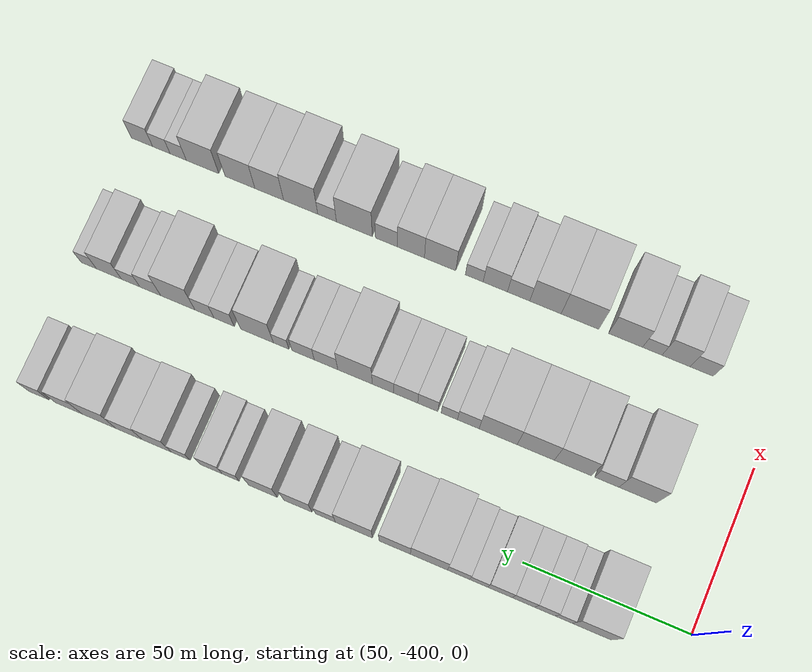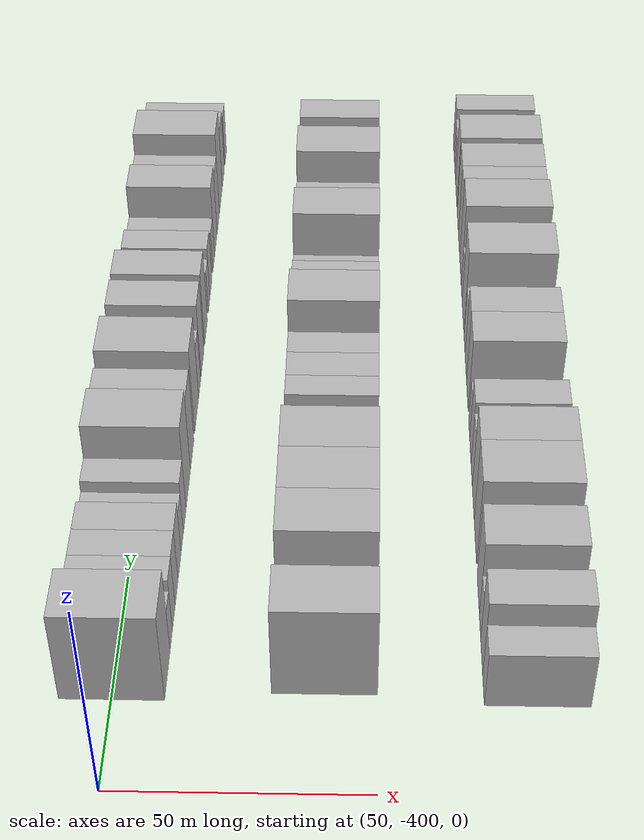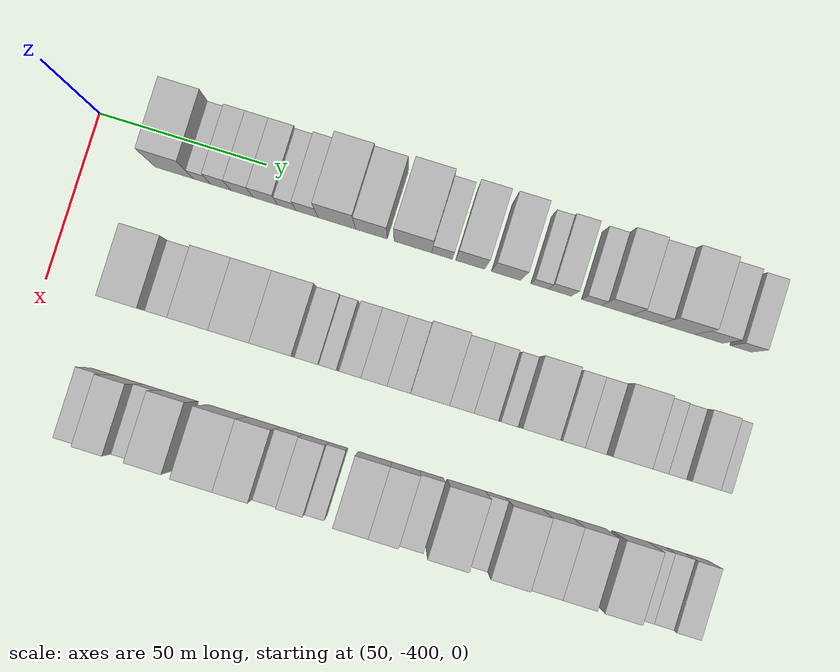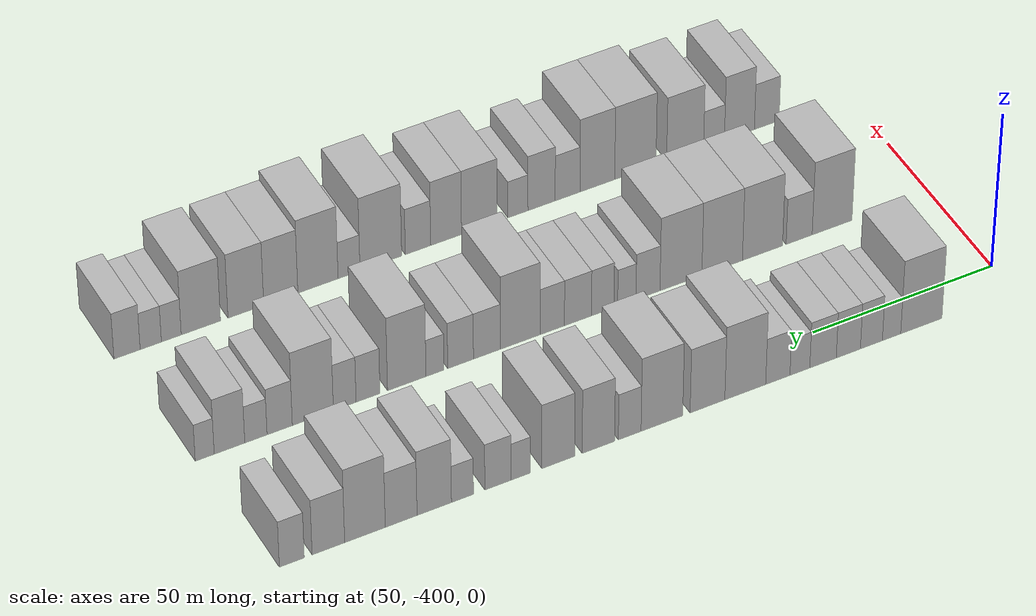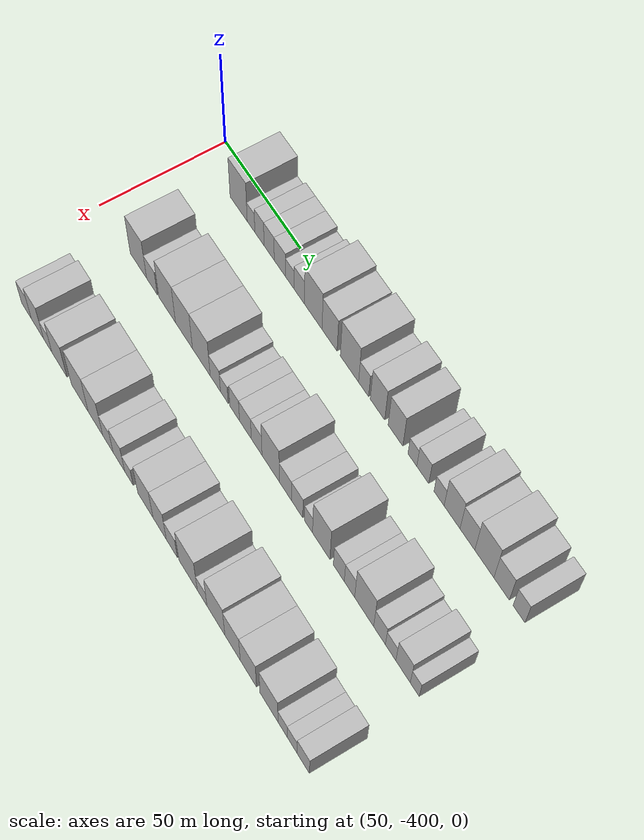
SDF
<sdf version="1.6">
 <world name="default">
  <model name="building_1">
   <static>1</static>
   <pose>50.0000 -374.2529 0 0.000000 0.000000 0.000000</pose>
   <link name="link">
    <pose>0 0 12.00 0 0 0</pose>
    <collision name="collision"><geometry><box><size>20.0000 11.4942 24.0000</size></box></geometry></collision>
    <visual name="visual">
     <cast_shadows>0</cast_shadows>
     <geometry><box><size>20.0000 11.4942 24.0000</size></box></geometry>
     <material>
      <script>
       <uri>model://HANNAS_wall/materials/scripts</uri>
       <uri>model://HANNAS_wall/materials/textures</uri>
       <name>vrc/HANNAS_wall</name>
      </script>
     </material>
    </visual>
   </link>
  </model>
  <model name="building_2">
   <static>1</static>
   <pose>50.0000 -365.9601 0 0.000000 0.000000 0.000000</pose>
   <link name="link">
    <pose>0 0 6.00 0 0 0</pose>
    <collision name="collision"><geometry><box><size>20.0000 5.0915 12.0000</size></box></geometry></collision>
    <visual name="visual">
     <cast_shadows>0</cast_shadows>
     <geometry><box><size>20.0000 5.0915 12.0000</size></box></geometry>
     <material>
      <script>
       <uri>model://HANNAS_wall/materials/scripts</uri>
       <uri>model://HANNAS_wall/materials/textures</uri>
       <name>vrc/HANNAS_wall</name>
      </script>
     </material>
    </visual>
   </link>
  </model>
  <model name="building_3">
   <static>1</static>
   <pose>50.0000 -360.3710 0 0.000000 0.000000 0.000000</pose>
   <link name="link">
    <pose>0 0 7.50 0 0 0</pose>
    <collision name="collision"><geometry><box><size>20.0000 6.0867 15.0000</size></box></geometry></collision>
    <visual name="visual">
     <cast_shadows>0</cast_shadows>
     <geometry><box><size>20.0000 6.0867 15.0000</size></box></geometry>
     <material>
      <script>
       <uri>model://HANNAS_wall/materials/scripts</uri>
       <uri>model://HANNAS_wall/materials/textures</uri>
       <name>vrc/HANNAS_wall</name>
      </script>
     </material>
    </visual>
   </link>
  </model>
  <model name="building_4">
   <static>1</static>
   <pose>50.0000 -353.9919 0 0.000000 0.000000 0.000000</pose>
   <link name="link">
    <pose>0 0 7.50 0 0 0</pose>
    <collision name="collision"><geometry><box><size>20.0000 6.6715 15.0000</size></box></geometry></collision>
    <visual name="visual">
     <cast_shadows>0</cast_shadows>
     <geometry><box><size>20.0000 6.6715 15.0000</size></box></geometry>
     <material>
      <script>
       <uri>model://HANNAS_wall/materials/scripts</uri>
       <uri>model://HANNAS_wall/materials/textures</uri>
       <name>vrc/HANNAS_wall</name>
      </script>
     </material>
    </visual>
   </link>
  </model>
  <model name="building_5">
   <static>1</static>
   <pose>50.0000 -347.0081 0 0.000000 0.000000 0.000000</pose>
   <link name="link">
    <pose>0 0 7.50 0 0 0</pose>
    <collision name="collision"><geometry><box><size>20.0000 7.2961 15.0000</size></box></geometry></collision>
    <visual name="visual">
     <cast_shadows>0</cast_shadows>
     <geometry><box><size>20.0000 7.2961 15.0000</size></box></geometry>
     <material>
      <script>
       <uri>model://HANNAS_wall/materials/scripts</uri>
       <uri>model://HANNAS_wall/materials/textures</uri>
       <name>vrc/HANNAS_wall</name>
      </script>
     </material>
    </visual>
   </link>
  </model>
  <model name="building_6">
   <static>1</static>
   <pose>50.0000 -340.6397 0 0.000000 0.000000 0.000000</pose>
   <link name="link">
    <pose>0 0 6.00 0 0 0</pose>
    <collision name="collision"><geometry><box><size>20.0000 5.4406 12.0000</size></box></geometry></collision>
    <visual name="visual">
     <cast_shadows>0</cast_shadows>
     <geometry><box><size>20.0000 5.4406 12.0000</size></box></geometry>
     <material>
      <script>
       <uri>model://HANNAS_wall/materials/scripts</uri>
       <uri>model://HANNAS_wall/materials/textures</uri>
       <name>vrc/HANNAS_wall</name>
      </script>
     </material>
    </visual>
   </link>
  </model>
  <model name="building_7">
   <static>1</static>
   <pose>50.0000 -334.5987 0 0.000000 0.000000 0.000000</pose>
   <link name="link">
    <pose>0 0 7.50 0 0 0</pose>
    <collision name="collision"><geometry><box><size>20.0000 6.6415 15.0000</size></box></geometry></collision>
    <visual name="visual">
     <cast_shadows>0</cast_shadows>
     <geometry><box><size>20.0000 6.6415 15.0000</size></box></geometry>
     <material>
      <script>
       <uri>model://HANNAS_wall/materials/scripts</uri>
       <uri>model://HANNAS_wall/materials/textures</uri>
       <name>vrc/HANNAS_wall</name>
      </script>
     </material>
    </visual>
   </link>
  </model>
  <model name="building_8">
   <static>1</static>
   <pose>50.0000 -325.7107 0 0.000000 0.000000 0.000000</pose>
   <link name="link">
    <pose>0 0 12.00 0 0 0</pose>
    <collision name="collision"><geometry><box><size>20.0000 11.1344 24.0000</size></box></geometry></collision>
    <visual name="visual">
     <cast_shadows>0</cast_shadows>
     <geometry><box><size>20.0000 11.1344 24.0000</size></box></geometry>
     <material>
      <script>
       <uri>model://HANNAS_wall/materials/scripts</uri>
       <uri>model://HANNAS_wall/materials/textures</uri>
       <name>vrc/HANNAS_wall</name>
      </script>
     </material>
    </visual>
   </link>
  </model>
  <model name="building_9">
   <static>1</static>
   <pose>50.0000 -315.4351 0 0.000000 0.000000 0.000000</pose>
   <link name="link">
    <pose>0 0 10.50 0 0 0</pose>
    <collision name="collision"><geometry><box><size>20.0000 9.4169 21.0000</size></box></geometry></collision>
    <visual name="visual">
     <cast_shadows>0</cast_shadows>
     <geometry><box><size>20.0000 9.4169 21.0000</size></box></geometry>
     <material>
      <script>
       <uri>model://HANNAS_wall/materials/scripts</uri>
       <uri>model://HANNAS_wall/materials/textures</uri>
       <name>vrc/HANNAS_wall</name>
      </script>
     </material>
    </visual>
   </link>
  </model>
  <model name="building_10">
   <static>1</static>
   <pose>50.0000 -303.1184 0 0.000000 0.000000 0.000000</pose>
   <link name="link">
    <pose>0 0 12.00 0 0 0</pose>
    <collision name="collision"><geometry><box><size>20.0000 11.2165 24.0000</size></box></geometry></collision>
    <visual name="visual">
     <cast_shadows>0</cast_shadows>
     <geometry><box><size>20.0000 11.2165 24.0000</size></box></geometry>
     <material>
      <script>
       <uri>model://HANNAS_wall/materials/scripts</uri>
       <uri>model://HANNAS_wall/materials/textures</uri>
       <name>vrc/HANNAS_wall</name>
      </script>
     </material>
    </visual>
   </link>
  </model>
  <model name="building_11">
   <static>1</static>
   <pose>50.0000 -294.4629 0 0.000000 0.000000 0.000000</pose>
   <link name="link">
    <pose>0 0 7.50 0 0 0</pose>
    <collision name="collision"><geometry><box><size>20.0000 6.0944 15.0000</size></box></geometry></collision>
    <visual name="visual">
     <cast_shadows>0</cast_shadows>
     <geometry><box><size>20.0000 6.0944 15.0000</size></box></geometry>
     <material>
      <script>
       <uri>model://HANNAS_wall/materials/scripts</uri>
       <uri>model://HANNAS_wall/materials/textures</uri>
       <name>vrc/HANNAS_wall</name>
      </script>
     </material>
    </visual>
   </link>
  </model>
  <model name="building_12">
   <static>1</static>
   <pose>50.0000 -286.0905 0 0.000000 0.000000 0.000000</pose>
   <link name="link">
    <pose>0 0 10.50 0 0 0</pose>
    <collision name="collision"><geometry><box><size>20.0000 8.6504 21.0000</size></box></geometry></collision>
    <visual name="visual">
     <cast_shadows>0</cast_shadows>
     <geometry><box><size>20.0000 8.6504 21.0000</size></box></geometry>
     <material>
      <script>
       <uri>model://HANNAS_wall/materials/scripts</uri>
       <uri>model://HANNAS_wall/materials/textures</uri>
       <name>vrc/HANNAS_wall</name>
      </script>
     </material>
    </visual>
   </link>
  </model>
  <model name="building_13">
   <static>1</static>
   <pose>50.0000 -275.4024 0 0.000000 0.000000 0.000000</pose>
   <link name="link">
    <pose>0 0 10.50 0 0 0</pose>
    <collision name="collision"><geometry><box><size>20.0000 8.7257 21.0000</size></box></geometry></collision>
    <visual name="visual">
     <cast_shadows>0</cast_shadows>
     <geometry><box><size>20.0000 8.7257 21.0000</size></box></geometry>
     <material>
      <script>
       <uri>model://HANNAS_wall/materials/scripts</uri>
       <uri>model://HANNAS_wall/materials/textures</uri>
       <name>vrc/HANNAS_wall</name>
      </script>
     </material>
    </visual>
   </link>
  </model>
  <model name="building_14">
   <static>1</static>
   <pose>50.0000 -265.4668 0 0.000000 0.000000 0.000000</pose>
   <link name="link">
    <pose>0 0 6.00 0 0 0</pose>
    <collision name="collision"><geometry><box><size>20.0000 5.1457 12.0000</size></box></geometry></collision>
    <visual name="visual">
     <cast_shadows>0</cast_shadows>
     <geometry><box><size>20.0000 5.1457 12.0000</size></box></geometry>
     <material>
      <script>
       <uri>model://HANNAS_wall/materials/scripts</uri>
       <uri>model://HANNAS_wall/materials/textures</uri>
       <name>vrc/HANNAS_wall</name>
      </script>
     </material>
    </visual>
   </link>
  </model>
  <model name="building_15">
   <static>1</static>
   <pose>50.0000 -259.4343 0 0.000000 0.000000 0.000000</pose>
   <link name="link">
    <pose>0 0 7.50 0 0 0</pose>
    <collision name="collision"><geometry><box><size>20.0000 6.9193 15.0000</size></box></geometry></collision>
    <visual name="visual">
     <cast_shadows>0</cast_shadows>
     <geometry><box><size>20.0000 6.9193 15.0000</size></box></geometry>
     <material>
      <script>
       <uri>model://HANNAS_wall/materials/scripts</uri>
       <uri>model://HANNAS_wall/materials/textures</uri>
       <name>vrc/HANNAS_wall</name>
      </script>
     </material>
    </visual>
   </link>
  </model>
  <model name="building_16">
   <static>1</static>
   <pose>50.0000 -250.0819 0 0.000000 0.000000 0.000000</pose>
   <link name="link">
    <pose>0 0 6.00 0 0 0</pose>
    <collision name="collision"><geometry><box><size>20.0000 5.7855 12.0000</size></box></geometry></collision>
    <visual name="visual">
     <cast_shadows>0</cast_shadows>
     <geometry><box><size>20.0000 5.7855 12.0000</size></box></geometry>
     <material>
      <script>
       <uri>model://HANNAS_wall/materials/scripts</uri>
       <uri>model://HANNAS_wall/materials/textures</uri>
       <name>vrc/HANNAS_wall</name>
      </script>
     </material>
    </visual>
   </link>
  </model>
  <model name="building_17">
   <static>1</static>
   <pose>50.0000 -242.6918 0 0.000000 0.000000 0.000000</pose>
   <link name="link">
    <pose>0 0 10.50 0 0 0</pose>
    <collision name="collision"><geometry><box><size>20.0000 8.9945 21.0000</size></box></geometry></collision>
    <visual name="visual">
     <cast_shadows>0</cast_shadows>
     <geometry><box><size>20.0000 8.9945 21.0000</size></box></geometry>
     <material>
      <script>
       <uri>model://HANNAS_wall/materials/scripts</uri>
       <uri>model://HANNAS_wall/materials/textures</uri>
       <name>vrc/HANNAS_wall</name>
      </script>
     </material>
    </visual>
   </link>
  </model>
  <model name="building_18">
   <static>1</static>
   <pose>50.0000 -234.0572 0 0.000000 0.000000 0.000000</pose>
   <link name="link">
    <pose>0 0 9.00 0 0 0</pose>
    <collision name="collision"><geometry><box><size>20.0000 8.2747 18.0000</size></box></geometry></collision>
    <visual name="visual">
     <cast_shadows>0</cast_shadows>
     <geometry><box><size>20.0000 8.2747 18.0000</size></box></geometry>
     <material>
      <script>
       <uri>model://HANNAS_wall/materials/scripts</uri>
       <uri>model://HANNAS_wall/materials/textures</uri>
       <name>vrc/HANNAS_wall</name>
      </script>
     </material>
    </visual>
   </link>
  </model>
  <model name="building_19">
   <static>1</static>
   <pose>50.0000 -224.6590 0 0.000000 0.000000 0.000000</pose>
   <link name="link">
    <pose>0 0 12.00 0 0 0</pose>
    <collision name="collision"><geometry><box><size>20.0000 10.5217 24.0000</size></box></geometry></collision>
    <visual name="visual">
     <cast_shadows>0</cast_shadows>
     <geometry><box><size>20.0000 10.5217 24.0000</size></box></geometry>
     <material>
      <script>
       <uri>model://HANNAS_wall/materials/scripts</uri>
       <uri>model://HANNAS_wall/materials/textures</uri>
       <name>vrc/HANNAS_wall</name>
      </script>
     </material>
    </visual>
   </link>
  </model>
  <model name="building_20">
   <static>1</static>
   <pose>50.0000 -215.1899 0 0.000000 0.000000 0.000000</pose>
   <link name="link">
    <pose>0 0 9.00 0 0 0</pose>
    <collision name="collision"><geometry><box><size>20.0000 8.4163 18.0000</size></box></geometry></collision>
    <visual name="visual">
     <cast_shadows>0</cast_shadows>
     <geometry><box><size>20.0000 8.4163 18.0000</size></box></geometry>
     <material>
      <script>
       <uri>model://HANNAS_wall/materials/scripts</uri>
       <uri>model://HANNAS_wall/materials/textures</uri>
       <name>vrc/HANNAS_wall</name>
      </script>
     </material>
    </visual>
   </link>
  </model>
  <model name="building_21">
   <static>1</static>
   <pose>50.0000 -205.7760 0 0.000000 0.000000 0.000000</pose>
   <link name="link">
    <pose>0 0 7.50 0 0 0</pose>
    <collision name="collision"><geometry><box><size>20.0000 6.4114 15.0000</size></box></geometry></collision>
    <visual name="visual">
     <cast_shadows>0</cast_shadows>
     <geometry><box><size>20.0000 6.4114 15.0000</size></box></geometry>
     <material>
      <script>
       <uri>model://HANNAS_wall/materials/scripts</uri>
       <uri>model://HANNAS_wall/materials/textures</uri>
       <name>vrc/HANNAS_wall</name>
      </script>
     </material>
    </visual>
   </link>
  </model>
  <model name="building_88">
   <static>1</static>
   <pose>90.0000 -372.3799 0 0.000000 0.000000 0.000000</pose>
   <link name="link">
    <pose>0 0 12.00 0 0 0</pose>
    <collision name="collision"><geometry><box><size>20.0000 11.2403 24.0000</size></box></geometry></collision>
    <visual name="visual">
     <cast_shadows>0</cast_shadows>
     <geometry><box><size>20.0000 11.2403 24.0000</size></box></geometry>
     <material>
      <script>
       <uri>model://HANNAS_wall/materials/scripts</uri>
       <uri>model://HANNAS_wall/materials/textures</uri>
       <name>vrc/HANNAS_wall</name>
      </script>
     </material>
    </visual>
   </link>
  </model>
  <model name="building_89">
   <static>1</static>
   <pose>90.0000 -363.1029 0 0.000000 0.000000 0.000000</pose>
   <link name="link">
    <pose>0 0 7.50 0 0 0</pose>
    <collision name="collision"><geometry><box><size>20.0000 7.3135 15.0000</size></box></geometry></collision>
    <visual name="visual">
     <cast_shadows>0</cast_shadows>
     <geometry><box><size>20.0000 7.3135 15.0000</size></box></geometry>
     <material>
      <script>
       <uri>model://HANNAS_wall/materials/scripts</uri>
       <uri>model://HANNAS_wall/materials/textures</uri>
       <name>vrc/HANNAS_wall</name>
      </script>
     </material>
    </visual>
   </link>
  </model>
  <model name="building_90">
   <static>1</static>
   <pose>90.0000 -352.8342 0 0.000000 0.000000 0.000000</pose>
   <link name="link">
    <pose>0 0 12.00 0 0 0</pose>
    <collision name="collision"><geometry><box><size>20.0000 11.2239 24.0000</size></box></geometry></collision>
    <visual name="visual">
     <cast_shadows>0</cast_shadows>
     <geometry><box><size>20.0000 11.2239 24.0000</size></box></geometry>
     <material>
      <script>
       <uri>model://HANNAS_wall/materials/scripts</uri>
       <uri>model://HANNAS_wall/materials/textures</uri>
       <name>vrc/HANNAS_wall</name>
      </script>
     </material>
    </visual>
   </link>
  </model>
  <model name="building_91">
   <static>1</static>
   <pose>90.0000 -341.5769 0 0.000000 0.000000 0.000000</pose>
   <link name="link">
    <pose>0 0 12.00 0 0 0</pose>
    <collision name="collision"><geometry><box><size>20.0000 11.2907 24.0000</size></box></geometry></collision>
    <visual name="visual">
     <cast_shadows>0</cast_shadows>
     <geometry><box><size>20.0000 11.2907 24.0000</size></box></geometry>
     <material>
      <script>
       <uri>model://HANNAS_wall/materials/scripts</uri>
       <uri>model://HANNAS_wall/materials/textures</uri>
       <name>vrc/HANNAS_wall</name>
      </script>
     </material>
    </visual>
   </link>
  </model>
  <model name="building_92">
   <static>1</static>
   <pose>90.0000 -330.1377 0 0.000000 0.000000 0.000000</pose>
   <link name="link">
    <pose>0 0 12.00 0 0 0</pose>
    <collision name="collision"><geometry><box><size>20.0000 11.5876 24.0000</size></box></geometry></collision>
    <visual name="visual">
     <cast_shadows>0</cast_shadows>
     <geometry><box><size>20.0000 11.5876 24.0000</size></box></geometry>
     <material>
      <script>
       <uri>model://HANNAS_wall/materials/scripts</uri>
       <uri>model://HANNAS_wall/materials/textures</uri>
       <name>vrc/HANNAS_wall</name>
      </script>
     </material>
    </visual>
   </link>
  </model>
  <model name="building_93">
   <static>1</static>
   <pose>90.0000 -321.0423 0 0.000000 0.000000 0.000000</pose>
   <link name="link">
    <pose>0 0 7.50 0 0 0</pose>
    <collision name="collision"><geometry><box><size>20.0000 6.6033 15.0000</size></box></geometry></collision>
    <visual name="visual">
     <cast_shadows>0</cast_shadows>
     <geometry><box><size>20.0000 6.6033 15.0000</size></box></geometry>
     <material>
      <script>
       <uri>model://HANNAS_wall/materials/scripts</uri>
       <uri>model://HANNAS_wall/materials/textures</uri>
       <name>vrc/HANNAS_wall</name>
      </script>
     </material>
    </visual>
   </link>
  </model>
  <model name="building_94">
   <static>1</static>
   <pose>90.0000 -315.2268 0 0.000000 0.000000 0.000000</pose>
   <link name="link">
    <pose>0 0 6.00 0 0 0</pose>
    <collision name="collision"><geometry><box><size>20.0000 5.0276 12.0000</size></box></geometry></collision>
    <visual name="visual">
     <cast_shadows>0</cast_shadows>
     <geometry><box><size>20.0000 5.0276 12.0000</size></box></geometry>
     <material>
      <script>
       <uri>model://HANNAS_wall/materials/scripts</uri>
       <uri>model://HANNAS_wall/materials/textures</uri>
       <name>vrc/HANNAS_wall</name>
      </script>
     </material>
    </visual>
   </link>
  </model>
  <model name="building_95">
   <static>1</static>
   <pose>90.0000 -308.6355 0 0.000000 0.000000 0.000000</pose>
   <link name="link">
    <pose>0 0 7.50 0 0 0</pose>
    <collision name="collision"><geometry><box><size>20.0000 6.1549 15.0000</size></box></geometry></collision>
    <visual name="visual">
     <cast_shadows>0</cast_shadows>
     <geometry><box><size>20.0000 6.1549 15.0000</size></box></geometry>
     <material>
      <script>
       <uri>model://HANNAS_wall/materials/scripts</uri>
       <uri>model://HANNAS_wall/materials/textures</uri>
       <name>vrc/HANNAS_wall</name>
      </script>
     </material>
    </visual>
   </link>
  </model>
  <model name="building_96">
   <static>1</static>
   <pose>90.0000 -301.8688 0 0.000000 0.000000 0.000000</pose>
   <link name="link">
    <pose>0 0 7.50 0 0 0</pose>
    <collision name="collision"><geometry><box><size>20.0000 7.3786 15.0000</size></box></geometry></collision>
    <visual name="visual">
     <cast_shadows>0</cast_shadows>
     <geometry><box><size>20.0000 7.3786 15.0000</size></box></geometry>
     <material>
      <script>
       <uri>model://HANNAS_wall/materials/scripts</uri>
       <uri>model://HANNAS_wall/materials/textures</uri>
       <name>vrc/HANNAS_wall</name>
      </script>
     </material>
    </visual>
   </link>
  </model>
  <model name="building_97">
   <static>1</static>
   <pose>90.0000 -294.8505 0 0.000000 0.000000 0.000000</pose>
   <link name="link">
    <pose>0 0 7.50 0 0 0</pose>
    <collision name="collision"><geometry><box><size>20.0000 6.6580 15.0000</size></box></geometry></collision>
    <visual name="visual">
     <cast_shadows>0</cast_shadows>
     <geometry><box><size>20.0000 6.6580 15.0000</size></box></geometry>
     <material>
      <script>
       <uri>model://HANNAS_wall/materials/scripts</uri>
       <uri>model://HANNAS_wall/materials/textures</uri>
       <name>vrc/HANNAS_wall</name>
      </script>
     </material>
    </visual>
   </link>
  </model>
  <model name="building_98">
   <static>1</static>
   <pose>90.0000 -286.1797 0 0.000000 0.000000 0.000000</pose>
   <link name="link">
    <pose>0 0 12.00 0 0 0</pose>
    <collision name="collision"><geometry><box><size>20.0000 10.6835 24.0000</size></box></geometry></collision>
    <visual name="visual">
     <cast_shadows>0</cast_shadows>
     <geometry><box><size>20.0000 10.6835 24.0000</size></box></geometry>
     <material>
      <script>
       <uri>model://HANNAS_wall/materials/scripts</uri>
       <uri>model://HANNAS_wall/materials/textures</uri>
       <name>vrc/HANNAS_wall</name>
      </script>
     </material>
    </visual>
   </link>
  </model>
  <model name="building_99">
   <static>1</static>
   <pose>90.0000 -277.1876 0 0.000000 0.000000 0.000000</pose>
   <link name="link">
    <pose>0 0 7.50 0 0 0</pose>
    <collision name="collision"><geometry><box><size>20.0000 7.3009 15.0000</size></box></geometry></collision>
    <visual name="visual">
     <cast_shadows>0</cast_shadows>
     <geometry><box><size>20.0000 7.3009 15.0000</size></box></geometry>
     <material>
      <script>
       <uri>model://HANNAS_wall/materials/scripts</uri>
       <uri>model://HANNAS_wall/materials/textures</uri>
       <name>vrc/HANNAS_wall</name>
      </script>
     </material>
    </visual>
   </link>
  </model>
  <model name="building_100">
   <static>1</static>
   <pose>90.0000 -270.0797 0 0.000000 0.000000 0.000000</pose>
   <link name="link">
    <pose>0 0 7.50 0 0 0</pose>
    <collision name="collision"><geometry><box><size>20.0000 6.9149 15.0000</size></box></geometry></collision>
    <visual name="visual">
     <cast_shadows>0</cast_shadows>
     <geometry><box><size>20.0000 6.9149 15.0000</size></box></geometry>
     <material>
      <script>
       <uri>model://HANNAS_wall/materials/scripts</uri>
       <uri>model://HANNAS_wall/materials/textures</uri>
       <name>vrc/HANNAS_wall</name>
      </script>
     </material>
    </visual>
   </link>
  </model>
  <model name="building_101">
   <static>1</static>
   <pose>90.0000 -263.2146 0 0.000000 0.000000 0.000000</pose>
   <link name="link">
    <pose>0 0 6.00 0 0 0</pose>
    <collision name="collision"><geometry><box><size>20.0000 4.8151 12.0000</size></box></geometry></collision>
    <visual name="visual">
     <cast_shadows>0</cast_shadows>
     <geometry><box><size>20.0000 4.8151 12.0000</size></box></geometry>
     <material>
      <script>
       <uri>model://HANNAS_wall/materials/scripts</uri>
       <uri>model://HANNAS_wall/materials/textures</uri>
       <name>vrc/HANNAS_wall</name>
      </script>
     </material>
    </visual>
   </link>
  </model>
  <model name="building_102">
   <static>1</static>
   <pose>90.0000 -255.6675 0 0.000000 0.000000 0.000000</pose>
   <link name="link">
    <pose>0 0 12.00 0 0 0</pose>
    <collision name="collision"><geometry><box><size>20.0000 10.2791 24.0000</size></box></geometry></collision>
    <visual name="visual">
     <cast_shadows>0</cast_shadows>
     <geometry><box><size>20.0000 10.2791 24.0000</size></box></geometry>
     <material>
      <script>
       <uri>model://HANNAS_wall/materials/scripts</uri>
       <uri>model://HANNAS_wall/materials/textures</uri>
       <name>vrc/HANNAS_wall</name>
      </script>
     </material>
    </visual>
   </link>
  </model>
  <model name="building_103">
   <static>1</static>
   <pose>90.0000 -245.3530 0 0.000000 0.000000 0.000000</pose>
   <link name="link">
    <pose>0 0 7.50 0 0 0</pose>
    <collision name="collision"><geometry><box><size>20.0000 6.3501 15.0000</size></box></geometry></collision>
    <visual name="visual">
     <cast_shadows>0</cast_shadows>
     <geometry><box><size>20.0000 6.3501 15.0000</size></box></geometry>
     <material>
      <script>
       <uri>model://HANNAS_wall/materials/scripts</uri>
       <uri>model://HANNAS_wall/materials/textures</uri>
       <name>vrc/HANNAS_wall</name>
      </script>
     </material>
    </visual>
   </link>
  </model>
  <model name="building_104">
   <static>1</static>
   <pose>90.0000 -239.1724 0 0.000000 0.000000 0.000000</pose>
   <link name="link">
    <pose>0 0 7.50 0 0 0</pose>
    <collision name="collision"><geometry><box><size>20.0000 6.0110 15.0000</size></box></geometry></collision>
    <visual name="visual">
     <cast_shadows>0</cast_shadows>
     <geometry><box><size>20.0000 6.0110 15.0000</size></box></geometry>
     <material>
      <script>
       <uri>model://HANNAS_wall/materials/scripts</uri>
       <uri>model://HANNAS_wall/materials/textures</uri>
       <name>vrc/HANNAS_wall</name>
      </script>
     </material>
    </visual>
   </link>
  </model>
  <model name="building_105">
   <static>1</static>
   <pose>90.0000 -230.7540 0 0.000000 0.000000 0.000000</pose>
   <link name="link">
    <pose>0 0 12.00 0 0 0</pose>
    <collision name="collision"><geometry><box><size>20.0000 10.8259 24.0000</size></box></geometry></collision>
    <visual name="visual">
     <cast_shadows>0</cast_shadows>
     <geometry><box><size>20.0000 10.8259 24.0000</size></box></geometry>
     <material>
      <script>
       <uri>model://HANNAS_wall/materials/scripts</uri>
       <uri>model://HANNAS_wall/materials/textures</uri>
       <name>vrc/HANNAS_wall</name>
      </script>
     </material>
    </visual>
   </link>
  </model>
  <model name="building_106">
   <static>1</static>
   <pose>90.0000 -222.0225 0 0.000000 0.000000 0.000000</pose>
   <link name="link">
    <pose>0 0 7.50 0 0 0</pose>
    <collision name="collision"><geometry><box><size>20.0000 6.6371 15.0000</size></box></geometry></collision>
    <visual name="visual">
     <cast_shadows>0</cast_shadows>
     <geometry><box><size>20.0000 6.6371 15.0000</size></box></geometry>
     <material>
      <script>
       <uri>model://HANNAS_wall/materials/scripts</uri>
       <uri>model://HANNAS_wall/materials/textures</uri>
       <name>vrc/HANNAS_wall</name>
      </script>
     </material>
    </visual>
   </link>
  </model>
  <model name="building_107">
   <static>1</static>
   <pose>90.0000 -215.7885 0 0.000000 0.000000 0.000000</pose>
   <link name="link">
    <pose>0 0 6.00 0 0 0</pose>
    <collision name="collision"><geometry><box><size>20.0000 5.8307 12.0000</size></box></geometry></collision>
    <visual name="visual">
     <cast_shadows>0</cast_shadows>
     <geometry><box><size>20.0000 5.8307 12.0000</size></box></geometry>
     <material>
      <script>
       <uri>model://HANNAS_wall/materials/scripts</uri>
       <uri>model://HANNAS_wall/materials/textures</uri>
       <name>vrc/HANNAS_wall</name>
      </script>
     </material>
    </visual>
   </link>
  </model>
  <model name="building_108">
   <static>1</static>
   <pose>90.0000 -208.8838 0 0.000000 0.000000 0.000000</pose>
   <link name="link">
    <pose>0 0 9.00 0 0 0</pose>
    <collision name="collision"><geometry><box><size>20.0000 7.9788 18.0000</size></box></geometry></collision>
    <visual name="visual">
     <cast_shadows>0</cast_shadows>
     <geometry><box><size>20.0000 7.9788 18.0000</size></box></geometry>
     <material>
      <script>
       <uri>model://HANNAS_wall/materials/scripts</uri>
       <uri>model://HANNAS_wall/materials/textures</uri>
       <name>vrc/HANNAS_wall</name>
      </script>
     </material>
    </visual>
   </link>
  </model>
  <model name="building_109">
   <static>1</static>
   <pose>90.0000 -202.4239 0 0.000000 0.000000 0.000000</pose>
   <link name="link">
    <pose>0 0 6.00 0 0 0</pose>
    <collision name="collision"><geometry><box><size>20.0000 4.9409 12.0000</size></box></geometry></collision>
    <visual name="visual">
     <cast_shadows>0</cast_shadows>
     <geometry><box><size>20.0000 4.9409 12.0000</size></box></geometry>
     <material>
      <script>
       <uri>model://HANNAS_wall/materials/scripts</uri>
       <uri>model://HANNAS_wall/materials/textures</uri>
       <name>vrc/HANNAS_wall</name>
      </script>
     </material>
    </visual>
   </link>
  </model>
  <model name="building_174">
   <static>1</static>
   <pose>130.0000 -376.4655 0 0.000000 0.000000 0.000000</pose>
   <link name="link">
    <pose>0 0 7.50 0 0 0</pose>
    <collision name="collision"><geometry><box><size>20.0000 7.0690 15.0000</size></box></geometry></collision>
    <visual name="visual">
     <cast_shadows>0</cast_shadows>
     <geometry><box><size>20.0000 7.0690 15.0000</size></box></geometry>
     <material>
      <script>
       <uri>model://HANNAS_wall/materials/scripts</uri>
       <uri>model://HANNAS_wall/materials/textures</uri>
       <name>vrc/HANNAS_wall</name>
      </script>
     </material>
    </visual>
   </link>
  </model>
  <model name="building_175">
   <static>1</static>
   <pose>130.0000 -368.6547 0 0.000000 0.000000 0.000000</pose>
   <link name="link">
    <pose>0 0 10.50 0 0 0</pose>
    <collision name="collision"><geometry><box><size>20.0000 8.5526 21.0000</size></box></geometry></collision>
    <visual name="visual">
     <cast_shadows>0</cast_shadows>
     <geometry><box><size>20.0000 8.5526 21.0000</size></box></geometry>
     <material>
      <script>
       <uri>model://HANNAS_wall/materials/scripts</uri>
       <uri>model://HANNAS_wall/materials/textures</uri>
       <name>vrc/HANNAS_wall</name>
      </script>
     </material>
    </visual>
   </link>
  </model>
  <model name="building_176">
   <static>1</static>
   <pose>130.0000 -361.4099 0 0.000000 0.000000 0.000000</pose>
   <link name="link">
    <pose>0 0 6.00 0 0 0</pose>
    <collision name="collision"><geometry><box><size>20.0000 5.9369 12.0000</size></box></geometry></collision>
    <visual name="visual">
     <cast_shadows>0</cast_shadows>
     <geometry><box><size>20.0000 5.9369 12.0000</size></box></geometry>
     <material>
      <script>
       <uri>model://HANNAS_wall/materials/scripts</uri>
       <uri>model://HANNAS_wall/materials/textures</uri>
       <name>vrc/HANNAS_wall</name>
      </script>
     </material>
    </visual>
   </link>
  </model>
  <model name="building_177">
   <static>1</static>
   <pose>130.0000 -353.2140 0 0.000000 0.000000 0.000000</pose>
   <link name="link">
    <pose>0 0 10.50 0 0 0</pose>
    <collision name="collision"><geometry><box><size>20.0000 10.4550 21.0000</size></box></geometry></collision>
    <visual name="visual">
     <cast_shadows>0</cast_shadows>
     <geometry><box><size>20.0000 10.4550 21.0000</size></box></geometry>
     <material>
      <script>
       <uri>model://HANNAS_wall/materials/scripts</uri>
       <uri>model://HANNAS_wall/materials/textures</uri>
       <name>vrc/HANNAS_wall</name>
      </script>
     </material>
    </visual>
   </link>
  </model>
  <model name="building_178">
   <static>1</static>
   <pose>130.0000 -339.1822 0 0.000000 0.000000 0.000000</pose>
   <link name="link">
    <pose>0 0 12.00 0 0 0</pose>
    <collision name="collision"><geometry><box><size>20.0000 11.6085 24.0000</size></box></geometry></collision>
    <visual name="visual">
     <cast_shadows>0</cast_shadows>
     <geometry><box><size>20.0000 11.6085 24.0000</size></box></geometry>
     <material>
      <script>
       <uri>model://HANNAS_wall/materials/scripts</uri>
       <uri>model://HANNAS_wall/materials/textures</uri>
       <name>vrc/HANNAS_wall</name>
      </script>
     </material>
    </visual>
   </link>
  </model>
  <model name="building_179">
   <static>1</static>
   <pose>130.0000 -328.5161 0 0.000000 0.000000 0.000000</pose>
   <link name="link">
    <pose>0 0 12.00 0 0 0</pose>
    <collision name="collision"><geometry><box><size>20.0000 9.7237 24.0000</size></box></geometry></collision>
    <visual name="visual">
     <cast_shadows>0</cast_shadows>
     <geometry><box><size>20.0000 9.7237 24.0000</size></box></geometry>
     <material>
      <script>
       <uri>model://HANNAS_wall/materials/scripts</uri>
       <uri>model://HANNAS_wall/materials/textures</uri>
       <name>vrc/HANNAS_wall</name>
      </script>
     </material>
    </visual>
   </link>
  </model>
  <model name="building_180">
   <static>1</static>
   <pose>130.0000 -320.1920 0 0.000000 0.000000 0.000000</pose>
   <link name="link">
    <pose>0 0 7.50 0 0 0</pose>
    <collision name="collision"><geometry><box><size>20.0000 6.9245 15.0000</size></box></geometry></collision>
    <visual name="visual">
     <cast_shadows>0</cast_shadows>
     <geometry><box><size>20.0000 6.9245 15.0000</size></box></geometry>
     <material>
      <script>
       <uri>model://HANNAS_wall/materials/scripts</uri>
       <uri>model://HANNAS_wall/materials/textures</uri>
       <name>vrc/HANNAS_wall</name>
      </script>
     </material>
    </visual>
   </link>
  </model>
  <model name="building_181">
   <static>1</static>
   <pose>130.0000 -312.9495 0 0.000000 0.000000 0.000000</pose>
   <link name="link">
    <pose>0 0 9.00 0 0 0</pose>
    <collision name="collision"><geometry><box><size>20.0000 7.5606 18.0000</size></box></geometry></collision>
    <visual name="visual">
     <cast_shadows>0</cast_shadows>
     <geometry><box><size>20.0000 7.5606 18.0000</size></box></geometry>
     <material>
      <script>
       <uri>model://HANNAS_wall/materials/scripts</uri>
       <uri>model://HANNAS_wall/materials/textures</uri>
       <name>vrc/HANNAS_wall</name>
      </script>
     </material>
    </visual>
   </link>
  </model>
  <model name="building_182">
   <static>1</static>
   <pose>130.0000 -306.3948 0 0.000000 0.000000 0.000000</pose>
   <link name="link">
    <pose>0 0 6.00 0 0 0</pose>
    <collision name="collision"><geometry><box><size>20.0000 5.5488 12.0000</size></box></geometry></collision>
    <visual name="visual">
     <cast_shadows>0</cast_shadows>
     <geometry><box><size>20.0000 5.5488 12.0000</size></box></geometry>
     <material>
      <script>
       <uri>model://HANNAS_wall/materials/scripts</uri>
       <uri>model://HANNAS_wall/materials/textures</uri>
       <name>vrc/HANNAS_wall</name>
      </script>
     </material>
    </visual>
   </link>
  </model>
  <model name="building_183">
   <static>1</static>
   <pose>130.0000 -295.7158 0 0.000000 0.000000 0.000000</pose>
   <link name="link">
    <pose>0 0 10.50 0 0 0</pose>
    <collision name="collision"><geometry><box><size>20.0000 9.8092 21.0000</size></box></geometry></collision>
    <visual name="visual">
     <cast_shadows>0</cast_shadows>
     <geometry><box><size>20.0000 9.8092 21.0000</size></box></geometry>
     <material>
      <script>
       <uri>model://HANNAS_wall/materials/scripts</uri>
       <uri>model://HANNAS_wall/materials/textures</uri>
       <name>vrc/HANNAS_wall</name>
      </script>
     </material>
    </visual>
   </link>
  </model>
  <model name="building_184">
   <static>1</static>
   <pose>130.0000 -286.5892 0 0.000000 0.000000 0.000000</pose>
   <link name="link">
    <pose>0 0 10.50 0 0 0</pose>
    <collision name="collision"><geometry><box><size>20.0000 8.4439 21.0000</size></box></geometry></collision>
    <visual name="visual">
     <cast_shadows>0</cast_shadows>
     <geometry><box><size>20.0000 8.4439 21.0000</size></box></geometry>
     <material>
      <script>
       <uri>model://HANNAS_wall/materials/scripts</uri>
       <uri>model://HANNAS_wall/materials/textures</uri>
       <name>vrc/HANNAS_wall</name>
      </script>
     </material>
    </visual>
   </link>
  </model>
  <model name="building_185">
   <static>1</static>
   <pose>130.0000 -278.8890 0 0.000000 0.000000 0.000000</pose>
   <link name="link">
    <pose>0 0 7.50 0 0 0</pose>
    <collision name="collision"><geometry><box><size>20.0000 6.9564 15.0000</size></box></geometry></collision>
    <visual name="visual">
     <cast_shadows>0</cast_shadows>
     <geometry><box><size>20.0000 6.9564 15.0000</size></box></geometry>
     <material>
      <script>
       <uri>model://HANNAS_wall/materials/scripts</uri>
       <uri>model://HANNAS_wall/materials/textures</uri>
       <name>vrc/HANNAS_wall</name>
      </script>
     </material>
    </visual>
   </link>
  </model>
  <model name="building_186">
   <static>1</static>
   <pose>130.0000 -268.7348 0 0.000000 0.000000 0.000000</pose>
   <link name="link">
    <pose>0 0 12.00 0 0 0</pose>
    <collision name="collision"><geometry><box><size>20.0000 11.3521 24.0000</size></box></geometry></collision>
    <visual name="visual">
     <cast_shadows>0</cast_shadows>
     <geometry><box><size>20.0000 11.3521 24.0000</size></box></geometry>
     <material>
      <script>
       <uri>model://HANNAS_wall/materials/scripts</uri>
       <uri>model://HANNAS_wall/materials/textures</uri>
       <name>vrc/HANNAS_wall</name>
      </script>
     </material>
    </visual>
   </link>
  </model>
  <model name="building_187">
   <static>1</static>
   <pose>130.0000 -260.0943 0 0.000000 0.000000 0.000000</pose>
   <link name="link">
    <pose>0 0 6.00 0 0 0</pose>
    <collision name="collision"><geometry><box><size>20.0000 5.9288 12.0000</size></box></geometry></collision>
    <visual name="visual">
     <cast_shadows>0</cast_shadows>
     <geometry><box><size>20.0000 5.9288 12.0000</size></box></geometry>
     <material>
      <script>
       <uri>model://HANNAS_wall/materials/scripts</uri>
       <uri>model://HANNAS_wall/materials/textures</uri>
       <name>vrc/HANNAS_wall</name>
      </script>
     </material>
    </visual>
   </link>
  </model>
  <model name="building_188">
   <static>1</static>
   <pose>130.0000 -251.6991 0 0.000000 0.000000 0.000000</pose>
   <link name="link">
    <pose>0 0 12.00 0 0 0</pose>
    <collision name="collision"><geometry><box><size>20.0000 10.8617 24.0000</size></box></geometry></collision>
    <visual name="visual">
     <cast_shadows>0</cast_shadows>
     <geometry><box><size>20.0000 10.8617 24.0000</size></box></geometry>
     <material>
      <script>
       <uri>model://HANNAS_wall/materials/scripts</uri>
       <uri>model://HANNAS_wall/materials/textures</uri>
       <name>vrc/HANNAS_wall</name>
      </script>
     </material>
    </visual>
   </link>
  </model>
  <model name="building_189">
   <static>1</static>
   <pose>130.0000 -241.6821 0 0.000000 0.000000 0.000000</pose>
   <link name="link">
    <pose>0 0 10.50 0 0 0</pose>
    <collision name="collision"><geometry><box><size>20.0000 9.1723 21.0000</size></box></geometry></collision>
    <visual name="visual">
     <cast_shadows>0</cast_shadows>
     <geometry><box><size>20.0000 9.1723 21.0000</size></box></geometry>
     <material>
      <script>
       <uri>model://HANNAS_wall/materials/scripts</uri>
       <uri>model://HANNAS_wall/materials/textures</uri>
       <name>vrc/HANNAS_wall</name>
      </script>
     </material>
    </visual>
   </link>
  </model>
  <model name="building_190">
   <static>1</static>
   <pose>130.0000 -232.3175 0 0.000000 0.000000 0.000000</pose>
   <link name="link">
    <pose>0 0 10.50 0 0 0</pose>
    <collision name="collision"><geometry><box><size>20.0000 9.5568 21.0000</size></box></geometry></collision>
    <visual name="visual">
     <cast_shadows>0</cast_shadows>
     <geometry><box><size>20.0000 9.5568 21.0000</size></box></geometry>
     <material>
      <script>
       <uri>model://HANNAS_wall/materials/scripts</uri>
       <uri>model://HANNAS_wall/materials/textures</uri>
       <name>vrc/HANNAS_wall</name>
      </script>
     </material>
    </visual>
   </link>
  </model>
  <model name="building_191">
   <static>1</static>
   <pose>130.0000 -220.3135 0 0.000000 0.000000 0.000000</pose>
   <link name="link">
    <pose>0 0 10.50 0 0 0</pose>
    <collision name="collision"><geometry><box><size>20.0000 10.4512 21.0000</size></box></geometry></collision>
    <visual name="visual">
     <cast_shadows>0</cast_shadows>
     <geometry><box><size>20.0000 10.4512 21.0000</size></box></geometry>
     <material>
      <script>
       <uri>model://HANNAS_wall/materials/scripts</uri>
       <uri>model://HANNAS_wall/materials/textures</uri>
       <name>vrc/HANNAS_wall</name>
      </script>
     </material>
    </visual>
   </link>
  </model>
  <model name="building_192">
   <static>1</static>
   <pose>130.0000 -212.4609 0 0.000000 0.000000 0.000000</pose>
   <link name="link">
    <pose>0 0 6.00 0 0 0</pose>
    <collision name="collision"><geometry><box><size>20.0000 5.2539 12.0000</size></box></geometry></collision>
    <visual name="visual">
     <cast_shadows>0</cast_shadows>
     <geometry><box><size>20.0000 5.2539 12.0000</size></box></geometry>
     <material>
      <script>
       <uri>model://HANNAS_wall/materials/scripts</uri>
       <uri>model://HANNAS_wall/materials/textures</uri>
       <name>vrc/HANNAS_wall</name>
      </script>
     </material>
    </visual>
   </link>
  </model>
  <model name="building_193">
   <static>1</static>
   <pose>130.0000 -207.0245 0 0.000000 0.000000 0.000000</pose>
   <link name="link">
    <pose>0 0 6.00 0 0 0</pose>
    <collision name="collision"><geometry><box><size>20.0000 5.6190 12.0000</size></box></geometry></collision>
    <visual name="visual">
     <cast_shadows>0</cast_shadows>
     <geometry><box><size>20.0000 5.6190 12.0000</size></box></geometry>
     <material>
      <script>
       <uri>model://HANNAS_wall/materials/scripts</uri>
       <uri>model://HANNAS_wall/materials/textures</uri>
       <name>vrc/HANNAS_wall</name>
      </script>
     </material>
    </visual>
   </link>
  </model>
  <model name="building_194">
   <static>1</static>
   <pose>130.0000 -200.7638 0 0.000000 0.000000 0.000000</pose>
   <link name="link">
    <pose>0 0 7.50 0 0 0</pose>
    <collision name="collision"><geometry><box><size>20.0000 6.9023 15.0000</size></box></geometry></collision>
    <visual name="visual">
     <cast_shadows>0</cast_shadows>
     <geometry><box><size>20.0000 6.9023 15.0000</size></box></geometry>
     <material>
      <script>
       <uri>model://HANNAS_wall/materials/scripts</uri>
       <uri>model://HANNAS_wall/materials/textures</uri>
       <name>vrc/HANNAS_wall</name>
      </script>
     </material>
    </visual>
   </link>
  </model>
 </world>
</sdf>
